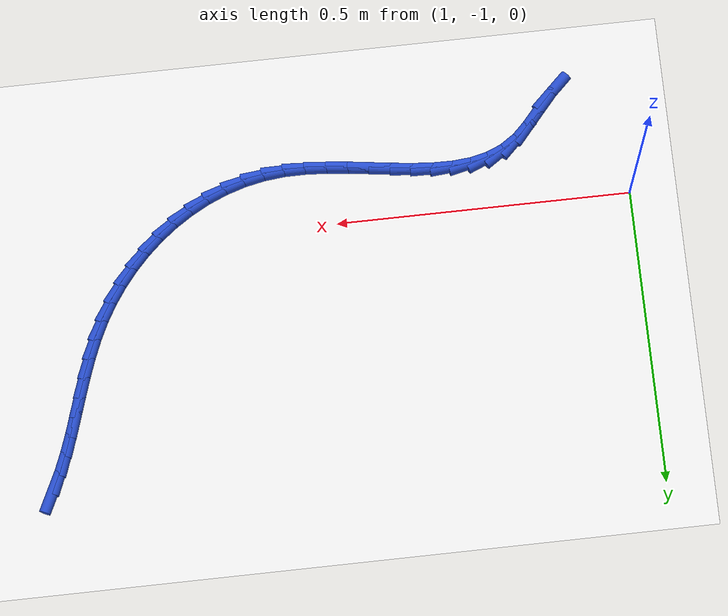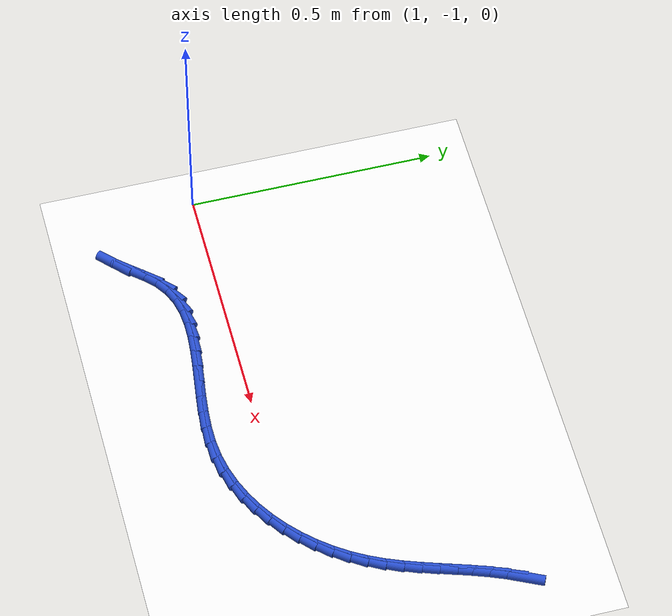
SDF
<sdf version="1.6">
 <world name="default">
  <model name="ground_plane">
   <static>1</static>
   <link name="link">
    <collision name="collision">
     <geometry><plane><normal>0 0 1</normal><size>100 100</size></plane></geometry>
     <surface><friction><ode><mu>100</mu><mu2>50</mu2></ode></friction></surface>
    </collision>
    <visual name="visual">
     <cast_shadows>0</cast_shadows>
     <geometry><plane><normal>0 0 1</normal><size>100 100</size></plane></geometry>
     <material>
      <script><uri>file://media/materials/scripts/gazebo.material</uri><name>Gazebo/WhiteGlow</name></script>
     </material>
    </visual>
   </link>
  </model>
  <model name="line">
   <link name="link_128">
    <pose>2.019389240663191 -0.5941643524359804 0.01 0 1.57 1.1175459056138475</pose>
    <collision name="collision">
     <geometry><cylinder><radius>0.01</radius><length>0.08</length></cylinder></geometry>
    </collision>
    <visual name="visual">
     <material>
      <script><name>Gazebo/Blue</name><uri>file://media/materials/scripts/gazebo.material</uri></script>
     </material>
     <geometry><cylinder><radius>0.01</radius><length>0.08</length></cylinder></geometry>
    </visual>
   </link>
   <link name="link_129">
    <pose>2.0047765075875206 -0.6241656358301085 0.01 0 1.57 1.1781724859522549</pose>
    <collision name="collision">
     <geometry><cylinder><radius>0.01</radius><length>0.08</length></cylinder></geometry>
    </collision>
    <visual name="visual">
     <material>
      <script><name>Gazebo/Blue</name><uri>file://media/materials/scripts/gazebo.material</uri></script>
     </material>
     <geometry><cylinder><radius>0.01</radius><length>0.08</length></cylinder></geometry>
    </visual>
   </link>
   <link name="link_130">
    <pose>1.9920268463082482 -0.6549525926752284 0.01 0 1.57 1.2214446602065825</pose>
    <collision name="collision">
     <geometry><cylinder><radius>0.01</radius><length>0.08</length></cylinder></geometry>
    </collision>
    <visual name="visual">
     <material>
      <script><name>Gazebo/Blue</name><uri>file://media/materials/scripts/gazebo.material</uri></script>
     </material>
     <geometry><cylinder><radius>0.01</radius><length>0.08</length></cylinder></geometry>
    </visual>
   </link>
   <link name="link_131">
    <pose>1.9806020771839905 -0.6863139952027103 0.01 0 1.57 1.2472543939636278</pose>
    <collision name="collision">
     <geometry><cylinder><radius>0.01</radius><length>0.08</length></cylinder></geometry>
    </collision>
    <visual name="visual">
     <material>
      <script><name>Gazebo/Blue</name><uri>file://media/materials/scripts/gazebo.material</uri></script>
     </material>
     <geometry><cylinder><radius>0.01</radius><length>0.08</length></cylinder></geometry>
    </visual>
   </link>
   <link name="link_132">
    <pose>1.969964020573363 -0.7180386156439217 0.01 0 1.57 1.2557240703535084</pose>
    <collision name="collision">
     <geometry><cylinder><radius>0.01</radius><length>0.08</length></cylinder></geometry>
    </collision>
    <visual name="visual">
     <material>
      <script><name>Gazebo/Blue</name><uri>file://media/materials/scripts/gazebo.material</uri></script>
     </material>
     <geometry><cylinder><radius>0.01</radius><length>0.08</length></cylinder></geometry>
    </visual>
   </link>
   <link name="link_133">
    <pose>1.9595744968349835 -0.7499152262302325 0.01 0 1.57 1.2469715655802553</pose>
    <collision name="collision">
     <geometry><cylinder><radius>0.01</radius><length>0.08</length></cylinder></geometry>
    </collision>
    <visual name="visual">
     <material>
      <script><name>Gazebo/Blue</name><uri>file://media/materials/scripts/gazebo.material</uri></script>
     </material>
     <geometry><cylinder><radius>0.01</radius><length>0.08</length></cylinder></geometry>
    </visual>
   </link>
   <link name="link_134">
    <pose>1.9488953263274666 -0.781732599193012 0.01 0 1.57 1.2210347579883252</pose>
    <collision name="collision">
     <geometry><cylinder><radius>0.01</radius><length>0.08</length></cylinder></geometry>
    </collision>
    <visual name="visual">
     <material>
      <script><name>Gazebo/Blue</name><uri>file://media/materials/scripts/gazebo.material</uri></script>
     </material>
     <geometry><cylinder><radius>0.01</radius><length>0.08</length></cylinder></geometry>
    </visual>
   </link>
   <link name="link_135">
    <pose>1.9373883294094292 -0.8132795067636297 0.01 0 1.57 1.1779497113363877</pose>
    <collision name="collision">
     <geometry><cylinder><radius>0.01</radius><length>0.08</length></cylinder></geometry>
    </collision>
    <visual name="visual">
     <material>
      <script><name>Gazebo/Blue</name><uri>file://media/materials/scripts/gazebo.material</uri></script>
     </material>
     <geometry><cylinder><radius>0.01</radius><length>0.08</length></cylinder></geometry>
    </visual>
   </link>
   <link name="link_136">
    <pose>1.9245153264394879 -0.8443447211734537 0.01 0 1.57 1.1179784972946178</pose>
    <collision name="collision">
     <geometry><cylinder><radius>0.01</radius><length>0.08</length></cylinder></geometry>
    </collision>
    <visual name="visual">
     <material>
      <script><name>Gazebo/Blue</name><uri>file://media/materials/scripts/gazebo.material</uri></script>
     </material>
     <geometry><cylinder><radius>0.01</radius><length>0.08</length></cylinder></geometry>
    </visual>
   </link>
   <link name="link_137">
    <pose>1.909738137776258 -0.8747170146538534 0.01 0 1.57 1.0439561029518485</pose>
    <collision name="collision">
     <geometry><cylinder><radius>0.01</radius><length>0.08</length></cylinder></geometry>
    </collision>
    <visual name="visual">
     <material>
      <script><name>Gazebo/Blue</name><uri>file://media/materials/scripts/gazebo.material</uri></script>
     </material>
     <geometry><cylinder><radius>0.01</radius><length>0.08</length></cylinder></geometry>
    </visual>
   </link>
   <link name="link_138">
    <pose>1.8925992839222177 -0.9041814013614864 0.01 0 1.57 0.9675224940518751</pose>
    <collision name="collision">
     <geometry><cylinder><radius>0.01</radius><length>0.08</length></cylinder></geometry>
    </collision>
    <visual name="visual">
     <material>
      <script><name>Gazebo/Blue</name><uri>file://media/materials/scripts/gazebo.material</uri></script>
     </material>
     <geometry><cylinder><radius>0.01</radius><length>0.08</length></cylinder></geometry>
    </visual>
   </link>
   <link name="link_139">
    <pose>1.8730876256507756 -0.9325021101110638 0.01 0 1.57 0.891659604279564</pose>
    <collision name="collision">
     <geometry><cylinder><radius>0.01</radius><length>0.08</length></cylinder></geometry>
    </collision>
    <visual name="visual">
     <material>
      <script><name>Gazebo/Blue</name><uri>file://media/materials/scripts/gazebo.material</uri></script>
     </material>
     <geometry><cylinder><radius>0.01</radius><length>0.08</length></cylinder></geometry>
    </visual>
   </link>
   <link name="link_140">
    <pose>1.8513454782033054 -0.9594362235917996 0.01 0 1.57 0.8153966893199627</pose>
    <collision name="collision">
     <geometry><cylinder><radius>0.01</radius><length>0.08</length></cylinder></geometry>
    </collision>
    <visual name="visual">
     <material>
      <script><name>Gazebo/Blue</name><uri>file://media/materials/scripts/gazebo.material</uri></script>
     </material>
     <geometry><cylinder><radius>0.01</radius><length>0.08</length></cylinder></geometry>
    </visual>
   </link>
   <link name="link_141">
    <pose>1.827515296975567 -0.9847408179661477 0.01 0 1.57 0.7378074703725414</pose>
    <collision name="collision">
     <geometry><cylinder><radius>0.01</radius><length>0.08</length></cylinder></geometry>
    </collision>
    <visual name="visual">
     <material>
      <script><name>Gazebo/Blue</name><uri>file://media/materials/scripts/gazebo.material</uri></script>
     </material>
     <geometry><cylinder><radius>0.01</radius><length>0.08</length></cylinder></geometry>
    </visual>
   </link>
   <link name="link_142">
    <pose>1.8017395373633203 -1.0081729693965606 0.01 0 1.57 0.6580209499472796</pose>
    <collision name="collision">
     <geometry><cylinder><radius>0.01</radius><length>0.08</length></cylinder></geometry>
    </collision>
    <visual name="visual">
     <material>
      <script><name>Gazebo/Blue</name><uri>file://media/materials/scripts/gazebo.material</uri></script>
     </material>
     <geometry><cylinder><radius>0.01</radius><length>0.08</length></cylinder></geometry>
    </visual>
   </link>
   <link name="link_143">
    <pose>1.7741606547623239 -1.0294897540454924 0.01 0 1.57 0.5752392568048509</pose>
    <collision name="collision">
     <geometry><cylinder><radius>0.01</radius><length>0.08</length></cylinder></geometry>
    </collision>
    <visual name="visual">
     <material>
      <script><name>Gazebo/Blue</name><uri>file://media/materials/scripts/gazebo.material</uri></script>
     </material>
     <geometry><cylinder><radius>0.01</radius><length>0.08</length></cylinder></geometry>
    </visual>
   </link>
   <link name="link_144">
    <pose>1.7449211045683395 -1.048448248075395 0.01 0 1.57 0.48877043683079874</pose>
    <collision name="collision">
     <geometry><cylinder><radius>0.01</radius><length>0.08</length></cylinder></geometry>
    </collision>
    <visual name="visual">
     <material>
      <script><name>Gazebo/Blue</name><uri>file://media/materials/scripts/gazebo.material</uri></script>
     </material>
     <geometry><cylinder><radius>0.01</radius><length>0.08</length></cylinder></geometry>
    </visual>
   </link>
   <link name="link_145">
    <pose>1.7141633421771265 -1.064805527648722 0.01 0 1.57 0.3980792914700494</pose>
    <collision name="collision">
     <geometry><cylinder><radius>0.01</radius><length>0.08</length></cylinder></geometry>
    </collision>
    <visual name="visual">
     <material>
      <script><name>Gazebo/Blue</name><uri>file://media/materials/scripts/gazebo.material</uri></script>
     </material>
     <geometry><cylinder><radius>0.01</radius><length>0.08</length></cylinder></geometry>
    </visual>
   </link>
   <link name="link_146">
    <pose>1.6820298229844448 -1.0783186689279263 0.01 0 1.57 0.30285613689880525</pose>
    <collision name="collision">
     <geometry><cylinder><radius>0.01</radius><length>0.08</length></cylinder></geometry>
    </collision>
    <visual name="visual">
     <material>
      <script><name>Gazebo/Blue</name><uri>file://media/materials/scripts/gazebo.material</uri></script>
     </material>
     <geometry><cylinder><radius>0.01</radius><length>0.08</length></cylinder></geometry>
    </visual>
   </link>
   <link name="link_147">
    <pose>1.6486630023860536 -1.088744748075461 0.01 0 1.57 0.2030972153471107</pose>
    <collision name="collision">
     <geometry><cylinder><radius>0.01</radius><length>0.08</length></cylinder></geometry>
    </collision>
    <visual name="visual">
     <material>
      <script><name>Gazebo/Blue</name><uri>file://media/materials/scripts/gazebo.material</uri></script>
     </material>
     <geometry><cylinder><radius>0.01</radius><length>0.08</length></cylinder></geometry>
    </visual>
   </link>
   <link name="link_148">
    <pose>1.614205335777713 -1.0958408412537792 0.01 0 1.57 0.09974075984136416</pose>
    <collision name="collision">
     <geometry><cylinder><radius>0.01</radius><length>0.08</length></cylinder></geometry>
    </collision>
    <visual name="visual">
     <material>
      <script><name>Gazebo/Blue</name><uri>file://media/materials/scripts/gazebo.material</uri></script>
     </material>
     <geometry><cylinder><radius>0.01</radius><length>0.08</length></cylinder></geometry>
    </visual>
   </link>
   <link name="link_149">
    <pose>1.5788020643728566 -1.0993837467773118 0.01 0 1.57 0.007101988876667383</pose>
    <collision name="collision">
     <geometry><cylinder><radius>0.01</radius><length>0.08</length></cylinder></geometry>
    </collision>
    <visual name="visual">
     <material>
      <script><name>Gazebo/Blue</name><uri>file://media/materials/scripts/gazebo.material</uri></script>
     </material>
     <geometry><cylinder><radius>0.01</radius><length>0.08</length></cylinder></geometry>
    </visual>
   </link>
   <link name="link_150">
    <pose>1.5426676596090063 -1.0996403772326875 0.01 0 1.57 -0.061472679978898125</pose>
    <collision name="collision">
     <geometry><cylinder><radius>0.01</radius><length>0.08</length></cylinder></geometry>
    </collision>
    <visual name="visual">
     <material>
      <script><name>Gazebo/Blue</name><uri>file://media/materials/scripts/gazebo.material</uri></script>
     </material>
     <geometry><cylinder><radius>0.01</radius><length>0.08</length></cylinder></geometry>
    </visual>
   </link>
   <link name="link_151">
    <pose>1.5060888150973621 -1.0973889409383242 0.01 0 1.57 -0.10731788132674845</pose>
    <collision name="collision">
     <geometry><cylinder><radius>0.01</radius><length>0.08</length></cylinder></geometry>
    </collision>
    <visual name="visual">
     <material>
      <script><name>Gazebo/Blue</name><uri>file://media/materials/scripts/gazebo.material</uri></script>
     </material>
     <geometry><cylinder><radius>0.01</radius><length>0.08</length></cylinder></geometry>
    </visual>
   </link>
   <link name="link_152">
    <pose>1.4693556089925275 -1.0934316070339247 0.01 0 1.57 -0.13205206710891312</pose>
    <collision name="collision">
     <geometry><cylinder><radius>0.01</radius><length>0.08</length></cylinder></geometry>
    </collision>
    <visual name="visual">
     <material>
      <script><name>Gazebo/Blue</name><uri>file://media/materials/scripts/gazebo.material</uri></script>
     </material>
     <geometry><cylinder><radius>0.01</radius><length>0.08</length></cylinder></geometry>
    </visual>
   </link>
   <link name="link_153">
    <pose>1.4327581194491072 -1.088570544659193 0.01 0 1.57 -0.13634505871419111</pose>
    <collision name="collision">
     <geometry><cylinder><radius>0.01</radius><length>0.08</length></cylinder></geometry>
    </collision>
    <visual name="visual">
     <material>
      <script><name>Gazebo/Blue</name><uri>file://media/materials/scripts/gazebo.material</uri></script>
     </material>
     <geometry><cylinder><radius>0.01</radius><length>0.08</length></cylinder></geometry>
    </visual>
   </link>
   <link name="link_154">
    <pose>1.3965864246217048 -1.083607922953833 0.01 0 1.57 -0.119632257066709</pose>
    <collision name="collision">
     <geometry><cylinder><radius>0.01</radius><length>0.08</length></cylinder></geometry>
    </collision>
    <visual name="visual">
     <material>
      <script><name>Gazebo/Blue</name><uri>file://media/materials/scripts/gazebo.material</uri></script>
     </material>
     <geometry><cylinder><radius>0.01</radius><length>0.08</length></cylinder></geometry>
    </visual>
   </link>
   <link name="link_155">
    <pose>1.3611306026649235 -1.0793459110575474 0.01 0 1.57 -0.07992353102378191</pose>
    <collision name="collision">
     <geometry><cylinder><radius>0.01</radius><length>0.08</length></cylinder></geometry>
    </collision>
    <visual name="visual">
     <material>
      <script><name>Gazebo/Blue</name><uri>file://media/materials/scripts/gazebo.material</uri></script>
     </material>
     <geometry><cylinder><radius>0.01</radius><length>0.08</length></cylinder></geometry>
    </visual>
   </link>
   <link name="link_156">
    <pose>1.3266807317333662 -1.07658667811004 0.01 0 1.57 -0.013701471895426651</pose>
    <collision name="collision">
     <geometry><cylinder><radius>0.01</radius><length>0.08</length></cylinder></geometry>
    </collision>
    <visual name="visual">
     <material>
      <script><name>Gazebo/Blue</name><uri>file://media/materials/scripts/gazebo.material</uri></script>
     </material>
     <geometry><cylinder><radius>0.01</radius><length>0.08</length></cylinder></geometry>
    </visual>
   </link>
   <link name="link_157">
    <pose>1.2935268899816388 -1.076132393251015 0.01 0 1.57 0.08383920816132283</pose>
    <collision name="collision">
     <geometry><cylinder><radius>0.01</radius><length>0.08</length></cylinder></geometry>
    </collision>
    <visual name="visual">
     <material>
      <script><name>Gazebo/Blue</name><uri>file://media/materials/scripts/gazebo.material</uri></script>
     </material>
     <geometry><cylinder><radius>0.01</radius><length>0.08</length></cylinder></geometry>
    </visual>
   </link>
   <link name="link_158">
    <pose>1.261959155564344 -1.0787852256201753 0.01 0 1.57 0.2175131364041093</pose>
    <collision name="collision">
     <geometry><cylinder><radius>0.01</radius><length>0.08</length></cylinder></geometry>
    </collision>
    <visual name="visual">
     <material>
      <script><name>Gazebo/Blue</name><uri>file://media/materials/scripts/gazebo.material</uri></script>
     </material>
     <geometry><cylinder><radius>0.01</radius><length>0.08</length></cylinder></geometry>
    </visual>
   </link>
   <link name="link_159">
    <pose>1.2322676066360851 -1.0853473443572246 0.01 0 1.57 0.38873039881022503</pose>
    <collision name="collision">
     <geometry><cylinder><radius>0.01</radius><length>0.08</length></cylinder></geometry>
    </collision>
    <visual name="visual">
     <material>
      <script><name>Gazebo/Blue</name><uri>file://media/materials/scripts/gazebo.material</uri></script>
     </material>
     <geometry><cylinder><radius>0.01</radius><length>0.08</length></cylinder></geometry>
    </visual>
   </link>
   <link name="link_160">
    <pose>1.2047423213514663 -1.0966209186018672 0.01 0 1.57 0.5900069209916099</pose>
    <collision name="collision">
     <geometry><cylinder><radius>0.01</radius><length>0.08</length></cylinder></geometry>
    </collision>
    <visual name="visual">
     <material>
      <script><name>Gazebo/Blue</name><uri>file://media/materials/scripts/gazebo.material</uri></script>
     </material>
     <geometry><cylinder><radius>0.01</radius><length>0.08</length></cylinder></geometry>
    </visual>
   </link>
   <link name="link_161">
    <pose>1.1796726145131293 -1.1134067336434135 0.01 0 1.57 0.7737721837879689</pose>
    <collision name="collision">
     <geometry><cylinder><radius>0.01</radius><length>0.08</length></cylinder></geometry>
    </collision>
    <visual name="visual">
     <material>
      <script><name>Gazebo/Blue</name><uri>file://media/materials/scripts/gazebo.material</uri></script>
     </material>
     <geometry><cylinder><radius>0.01</radius><length>0.08</length></cylinder></geometry>
    </visual>
   </link>
   <link name="link_162">
    <pose>1.1568864251746493 -1.1356691650379682 0.01 0 1.57 0.8598536245451788</pose>
    <collision name="collision">
     <geometry><cylinder><radius>0.01</radius><length>0.08</length></cylinder></geometry>
    </collision>
    <visual name="visual">
     <material>
      <script><name>Gazebo/Blue</name><uri>file://media/materials/scripts/gazebo.material</uri></script>
     </material>
     <geometry><cylinder><radius>0.01</radius><length>0.08</length></cylinder></geometry>
    </visual>
   </link>
   <link name="link_163">
    <pose>1.1349690613536467 -1.1611198719919715 0.01 0 1.57 0.8532324863465657</pose>
    <collision name="collision">
     <geometry><cylinder><radius>0.01</radius><length>0.08</length></cylinder></geometry>
    </collision>
    <visual name="visual">
     <material>
      <script><name>Gazebo/Blue</name><uri>file://media/materials/scripts/gazebo.material</uri></script>
     </material>
     <geometry><cylinder><radius>0.01</radius><length>0.08</length></cylinder></geometry>
    </visual>
   </link>
   <link name="link_164">
    <pose>1.1122987452618505 -1.1870950960961626 0.01 0 1.57 0.7606844991730519</pose>
    <collision name="collision">
     <geometry><cylinder><radius>0.01</radius><length>0.08</length></cylinder></geometry>
    </collision>
    <visual name="visual">
     <material>
      <script><name>Gazebo/Blue</name><uri>file://media/materials/scripts/gazebo.material</uri></script>
     </material>
     <geometry><cylinder><radius>0.01</radius><length>0.08</length></cylinder></geometry>
    </visual>
   </link>
  </model>
 </world>
</sdf>
